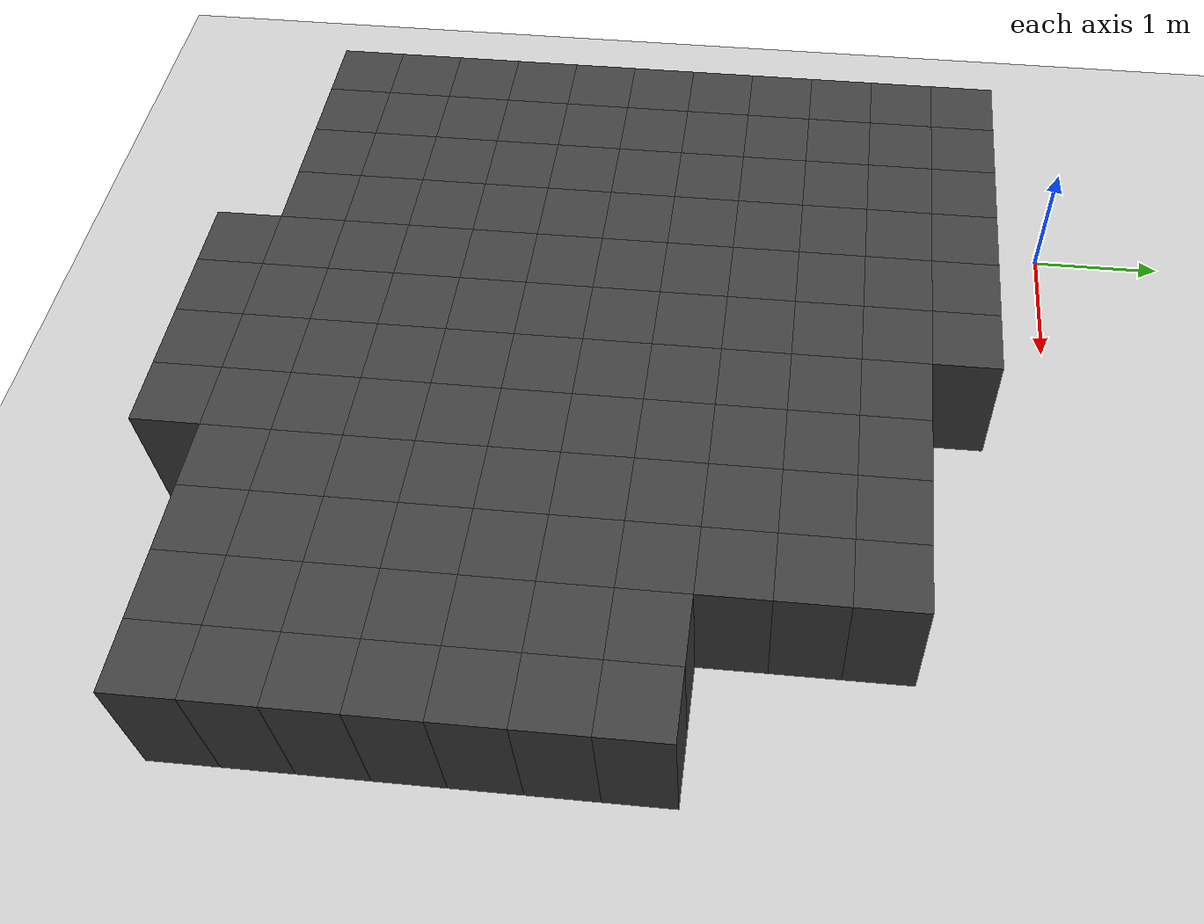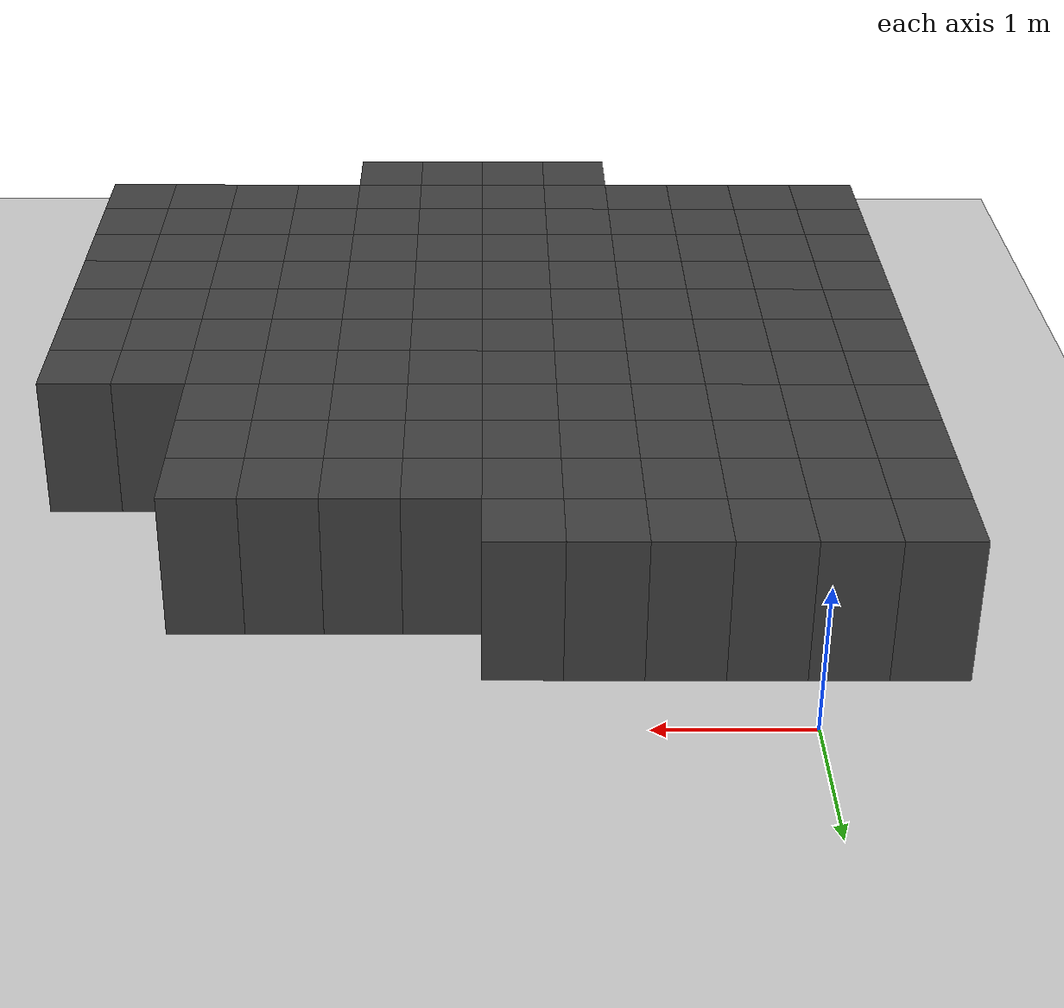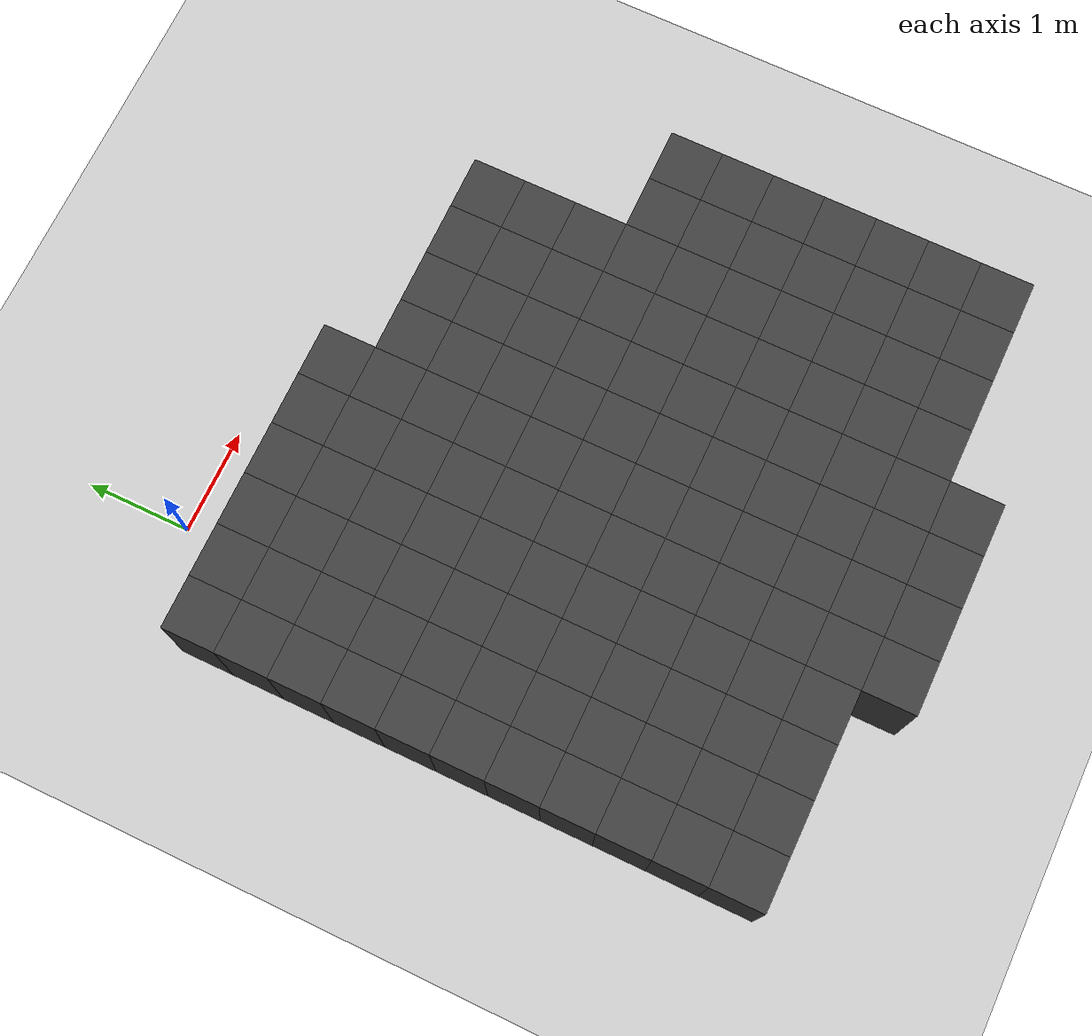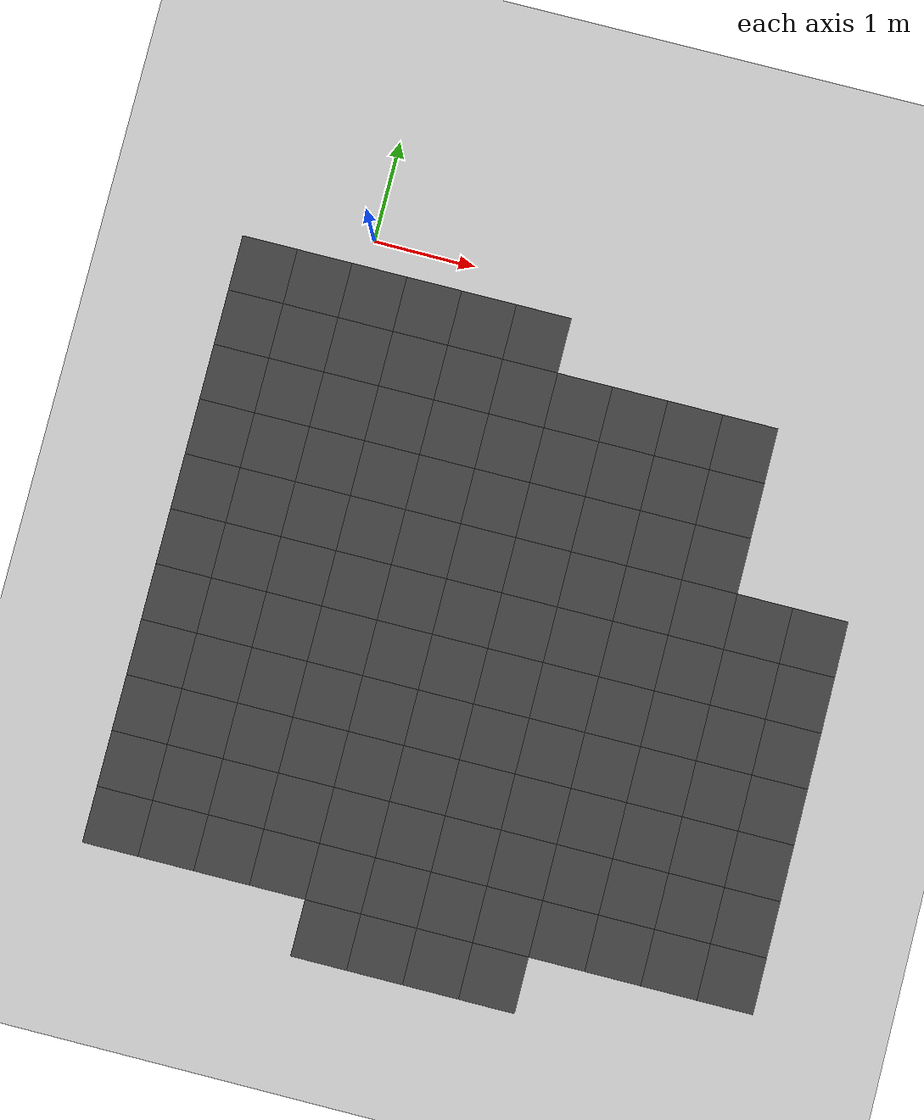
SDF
<sdf version="1.7">
 <world name="map_13364">
  <model name="ground_plane">
   <static>true</static>
   <link name="link">
    <collision name="collision">
     <geometry><plane><normal>0 0 1</normal><size>200 200</size></plane></geometry>
    </collision>
    <visual name="visual">
     <geometry><plane><normal>0 0 1</normal><size>200 200</size></plane></geometry>
     <material><ambient>0.8 0.8 0.8 1</ambient><diffuse>0.8 0.8 0.8 1</diffuse></material>
    </visual>
   </link>
  </model>
  <model name="maze_environment">
   <static>true</static>
   <link name="wall_940">
    <pose>-0.750 -0.750 0.500 0 0 0</pose>
    <collision name="col"><geometry><box><size>0.5 0.5 1.0</size></box></geometry></collision>
    <visual name="vis">
     <geometry><box><size>0.5 0.5 1.0</size></box></geometry>
     <material><ambient>0.15 0.15 0.15 1</ambient><diffuse>0.25 0.25 0.25 1</diffuse></material>
    </visual>
   </link>
   <link name="wall_941">
    <pose>-0.250 -0.750 0.500 0 0 0</pose>
    <collision name="col"><geometry><box><size>0.5 0.5 1.0</size></box></geometry></collision>
    <visual name="vis">
     <geometry><box><size>0.5 0.5 1.0</size></box></geometry>
     <material><ambient>0.15 0.15 0.15 1</ambient><diffuse>0.25 0.25 0.25 1</diffuse></material>
    </visual>
   </link>
   <link name="wall_942">
    <pose>0.250 -0.750 0.500 0 0 0</pose>
    <collision name="col"><geometry><box><size>0.5 0.5 1.0</size></box></geometry></collision>
    <visual name="vis">
     <geometry><box><size>0.5 0.5 1.0</size></box></geometry>
     <material><ambient>0.15 0.15 0.15 1</ambient><diffuse>0.25 0.25 0.25 1</diffuse></material>
    </visual>
   </link>
   <link name="wall_943">
    <pose>0.750 -0.750 0.500 0 0 0</pose>
    <collision name="col"><geometry><box><size>0.5 0.5 1.0</size></box></geometry></collision>
    <visual name="vis">
     <geometry><box><size>0.5 0.5 1.0</size></box></geometry>
     <material><ambient>0.15 0.15 0.15 1</ambient><diffuse>0.25 0.25 0.25 1</diffuse></material>
    </visual>
   </link>
   <link name="wall_944">
    <pose>1.250 -0.750 0.500 0 0 0</pose>
    <collision name="col"><geometry><box><size>0.5 0.5 1.0</size></box></geometry></collision>
    <visual name="vis">
     <geometry><box><size>0.5 0.5 1.0</size></box></geometry>
     <material><ambient>0.15 0.15 0.15 1</ambient><diffuse>0.25 0.25 0.25 1</diffuse></material>
    </visual>
   </link>
   <link name="wall_945">
    <pose>1.750 -0.750 0.500 0 0 0</pose>
    <collision name="col"><geometry><box><size>0.5 0.5 1.0</size></box></geometry></collision>
    <visual name="vis">
     <geometry><box><size>0.5 0.5 1.0</size></box></geometry>
     <material><ambient>0.15 0.15 0.15 1</ambient><diffuse>0.25 0.25 0.25 1</diffuse></material>
    </visual>
   </link>
   <link name="wall_967">
    <pose>-0.750 -1.250 0.500 0 0 0</pose>
    <collision name="col"><geometry><box><size>0.5 0.5 1.0</size></box></geometry></collision>
    <visual name="vis">
     <geometry><box><size>0.5 0.5 1.0</size></box></geometry>
     <material><ambient>0.15 0.15 0.15 1</ambient><diffuse>0.25 0.25 0.25 1</diffuse></material>
    </visual>
   </link>
   <link name="wall_968">
    <pose>-0.250 -1.250 0.500 0 0 0</pose>
    <collision name="col"><geometry><box><size>0.5 0.5 1.0</size></box></geometry></collision>
    <visual name="vis">
     <geometry><box><size>0.5 0.5 1.0</size></box></geometry>
     <material><ambient>0.15 0.15 0.15 1</ambient><diffuse>0.25 0.25 0.25 1</diffuse></material>
    </visual>
   </link>
   <link name="wall_969">
    <pose>0.250 -1.250 0.500 0 0 0</pose>
    <collision name="col"><geometry><box><size>0.5 0.5 1.0</size></box></geometry></collision>
    <visual name="vis">
     <geometry><box><size>0.5 0.5 1.0</size></box></geometry>
     <material><ambient>0.15 0.15 0.15 1</ambient><diffuse>0.25 0.25 0.25 1</diffuse></material>
    </visual>
   </link>
   <link name="wall_970">
    <pose>0.750 -1.250 0.500 0 0 0</pose>
    <collision name="col"><geometry><box><size>0.5 0.5 1.0</size></box></geometry></collision>
    <visual name="vis">
     <geometry><box><size>0.5 0.5 1.0</size></box></geometry>
     <material><ambient>0.15 0.15 0.15 1</ambient><diffuse>0.25 0.25 0.25 1</diffuse></material>
    </visual>
   </link>
   <link name="wall_971">
    <pose>1.250 -1.250 0.500 0 0 0</pose>
    <collision name="col"><geometry><box><size>0.5 0.5 1.0</size></box></geometry></collision>
    <visual name="vis">
     <geometry><box><size>0.5 0.5 1.0</size></box></geometry>
     <material><ambient>0.15 0.15 0.15 1</ambient><diffuse>0.25 0.25 0.25 1</diffuse></material>
    </visual>
   </link>
   <link name="wall_972">
    <pose>1.750 -1.250 0.500 0 0 0</pose>
    <collision name="col"><geometry><box><size>0.5 0.5 1.0</size></box></geometry></collision>
    <visual name="vis">
     <geometry><box><size>0.5 0.5 1.0</size></box></geometry>
     <material><ambient>0.15 0.15 0.15 1</ambient><diffuse>0.25 0.25 0.25 1</diffuse></material>
    </visual>
   </link>
   <link name="wall_973">
    <pose>2.250 -1.250 0.500 0 0 0</pose>
    <collision name="col"><geometry><box><size>0.5 0.5 1.0</size></box></geometry></collision>
    <visual name="vis">
     <geometry><box><size>0.5 0.5 1.0</size></box></geometry>
     <material><ambient>0.15 0.15 0.15 1</ambient><diffuse>0.25 0.25 0.25 1</diffuse></material>
    </visual>
   </link>
   <link name="wall_974">
    <pose>2.750 -1.250 0.500 0 0 0</pose>
    <collision name="col"><geometry><box><size>0.5 0.5 1.0</size></box></geometry></collision>
    <visual name="vis">
     <geometry><box><size>0.5 0.5 1.0</size></box></geometry>
     <material><ambient>0.15 0.15 0.15 1</ambient><diffuse>0.25 0.25 0.25 1</diffuse></material>
    </visual>
   </link>
   <link name="wall_975">
    <pose>3.250 -1.250 0.500 0 0 0</pose>
    <collision name="col"><geometry><box><size>0.5 0.5 1.0</size></box></geometry></collision>
    <visual name="vis">
     <geometry><box><size>0.5 0.5 1.0</size></box></geometry>
     <material><ambient>0.15 0.15 0.15 1</ambient><diffuse>0.25 0.25 0.25 1</diffuse></material>
    </visual>
   </link>
   <link name="wall_976">
    <pose>3.750 -1.250 0.500 0 0 0</pose>
    <collision name="col"><geometry><box><size>0.5 0.5 1.0</size></box></geometry></collision>
    <visual name="vis">
     <geometry><box><size>0.5 0.5 1.0</size></box></geometry>
     <material><ambient>0.15 0.15 0.15 1</ambient><diffuse>0.25 0.25 0.25 1</diffuse></material>
    </visual>
   </link>
   <link name="wall_998">
    <pose>-0.750 -1.750 0.500 0 0 0</pose>
    <collision name="col"><geometry><box><size>0.5 0.5 1.0</size></box></geometry></collision>
    <visual name="vis">
     <geometry><box><size>0.5 0.5 1.0</size></box></geometry>
     <material><ambient>0.15 0.15 0.15 1</ambient><diffuse>0.25 0.25 0.25 1</diffuse></material>
    </visual>
   </link>
   <link name="wall_999">
    <pose>-0.250 -1.750 0.500 0 0 0</pose>
    <collision name="col"><geometry><box><size>0.5 0.5 1.0</size></box></geometry></collision>
    <visual name="vis">
     <geometry><box><size>0.5 0.5 1.0</size></box></geometry>
     <material><ambient>0.15 0.15 0.15 1</ambient><diffuse>0.25 0.25 0.25 1</diffuse></material>
    </visual>
   </link>
   <link name="wall_1000">
    <pose>0.250 -1.750 0.500 0 0 0</pose>
    <collision name="col"><geometry><box><size>0.5 0.5 1.0</size></box></geometry></collision>
    <visual name="vis">
     <geometry><box><size>0.5 0.5 1.0</size></box></geometry>
     <material><ambient>0.15 0.15 0.15 1</ambient><diffuse>0.25 0.25 0.25 1</diffuse></material>
    </visual>
   </link>
   <link name="wall_1001">
    <pose>0.750 -1.750 0.500 0 0 0</pose>
    <collision name="col"><geometry><box><size>0.5 0.5 1.0</size></box></geometry></collision>
    <visual name="vis">
     <geometry><box><size>0.5 0.5 1.0</size></box></geometry>
     <material><ambient>0.15 0.15 0.15 1</ambient><diffuse>0.25 0.25 0.25 1</diffuse></material>
    </visual>
   </link>
   <link name="wall_1002">
    <pose>1.250 -1.750 0.500 0 0 0</pose>
    <collision name="col"><geometry><box><size>0.5 0.5 1.0</size></box></geometry></collision>
    <visual name="vis">
     <geometry><box><size>0.5 0.5 1.0</size></box></geometry>
     <material><ambient>0.15 0.15 0.15 1</ambient><diffuse>0.25 0.25 0.25 1</diffuse></material>
    </visual>
   </link>
   <link name="wall_1003">
    <pose>1.750 -1.750 0.500 0 0 0</pose>
    <collision name="col"><geometry><box><size>0.5 0.5 1.0</size></box></geometry></collision>
    <visual name="vis">
     <geometry><box><size>0.5 0.5 1.0</size></box></geometry>
     <material><ambient>0.15 0.15 0.15 1</ambient><diffuse>0.25 0.25 0.25 1</diffuse></material>
    </visual>
   </link>
   <link name="wall_1004">
    <pose>2.250 -1.750 0.500 0 0 0</pose>
    <collision name="col"><geometry><box><size>0.5 0.5 1.0</size></box></geometry></collision>
    <visual name="vis">
     <geometry><box><size>0.5 0.5 1.0</size></box></geometry>
     <material><ambient>0.15 0.15 0.15 1</ambient><diffuse>0.25 0.25 0.25 1</diffuse></material>
    </visual>
   </link>
   <link name="wall_1005">
    <pose>2.750 -1.750 0.500 0 0 0</pose>
    <collision name="col"><geometry><box><size>0.5 0.5 1.0</size></box></geometry></collision>
    <visual name="vis">
     <geometry><box><size>0.5 0.5 1.0</size></box></geometry>
     <material><ambient>0.15 0.15 0.15 1</ambient><diffuse>0.25 0.25 0.25 1</diffuse></material>
    </visual>
   </link>
   <link name="wall_1006">
    <pose>3.250 -1.750 0.500 0 0 0</pose>
    <collision name="col"><geometry><box><size>0.5 0.5 1.0</size></box></geometry></collision>
    <visual name="vis">
     <geometry><box><size>0.5 0.5 1.0</size></box></geometry>
     <material><ambient>0.15 0.15 0.15 1</ambient><diffuse>0.25 0.25 0.25 1</diffuse></material>
    </visual>
   </link>
   <link name="wall_1007">
    <pose>3.750 -1.750 0.500 0 0 0</pose>
    <collision name="col"><geometry><box><size>0.5 0.5 1.0</size></box></geometry></collision>
    <visual name="vis">
     <geometry><box><size>0.5 0.5 1.0</size></box></geometry>
     <material><ambient>0.15 0.15 0.15 1</ambient><diffuse>0.25 0.25 0.25 1</diffuse></material>
    </visual>
   </link>
   <link name="wall_1029">
    <pose>-0.750 -2.250 0.500 0 0 0</pose>
    <collision name="col"><geometry><box><size>0.5 0.5 1.0</size></box></geometry></collision>
    <visual name="vis">
     <geometry><box><size>0.5 0.5 1.0</size></box></geometry>
     <material><ambient>0.15 0.15 0.15 1</ambient><diffuse>0.25 0.25 0.25 1</diffuse></material>
    </visual>
   </link>
   <link name="wall_1030">
    <pose>-0.250 -2.250 0.500 0 0 0</pose>
    <collision name="col"><geometry><box><size>0.5 0.5 1.0</size></box></geometry></collision>
    <visual name="vis">
     <geometry><box><size>0.5 0.5 1.0</size></box></geometry>
     <material><ambient>0.15 0.15 0.15 1</ambient><diffuse>0.25 0.25 0.25 1</diffuse></material>
    </visual>
   </link>
   <link name="wall_1031">
    <pose>0.250 -2.250 0.500 0 0 0</pose>
    <collision name="col"><geometry><box><size>0.5 0.5 1.0</size></box></geometry></collision>
    <visual name="vis">
     <geometry><box><size>0.5 0.5 1.0</size></box></geometry>
     <material><ambient>0.15 0.15 0.15 1</ambient><diffuse>0.25 0.25 0.25 1</diffuse></material>
    </visual>
   </link>
   <link name="wall_1032">
    <pose>0.750 -2.250 0.500 0 0 0</pose>
    <collision name="col"><geometry><box><size>0.5 0.5 1.0</size></box></geometry></collision>
    <visual name="vis">
     <geometry><box><size>0.5 0.5 1.0</size></box></geometry>
     <material><ambient>0.15 0.15 0.15 1</ambient><diffuse>0.25 0.25 0.25 1</diffuse></material>
    </visual>
   </link>
   <link name="wall_1033">
    <pose>1.250 -2.250 0.500 0 0 0</pose>
    <collision name="col"><geometry><box><size>0.5 0.5 1.0</size></box></geometry></collision>
    <visual name="vis">
     <geometry><box><size>0.5 0.5 1.0</size></box></geometry>
     <material><ambient>0.15 0.15 0.15 1</ambient><diffuse>0.25 0.25 0.25 1</diffuse></material>
    </visual>
   </link>
   <link name="wall_1034">
    <pose>1.750 -2.250 0.500 0 0 0</pose>
    <collision name="col"><geometry><box><size>0.5 0.5 1.0</size></box></geometry></collision>
    <visual name="vis">
     <geometry><box><size>0.5 0.5 1.0</size></box></geometry>
     <material><ambient>0.15 0.15 0.15 1</ambient><diffuse>0.25 0.25 0.25 1</diffuse></material>
    </visual>
   </link>
   <link name="wall_1035">
    <pose>2.250 -2.250 0.500 0 0 0</pose>
    <collision name="col"><geometry><box><size>0.5 0.5 1.0</size></box></geometry></collision>
    <visual name="vis">
     <geometry><box><size>0.5 0.5 1.0</size></box></geometry>
     <material><ambient>0.15 0.15 0.15 1</ambient><diffuse>0.25 0.25 0.25 1</diffuse></material>
    </visual>
   </link>
   <link name="wall_1036">
    <pose>2.750 -2.250 0.500 0 0 0</pose>
    <collision name="col"><geometry><box><size>0.5 0.5 1.0</size></box></geometry></collision>
    <visual name="vis">
     <geometry><box><size>0.5 0.5 1.0</size></box></geometry>
     <material><ambient>0.15 0.15 0.15 1</ambient><diffuse>0.25 0.25 0.25 1</diffuse></material>
    </visual>
   </link>
   <link name="wall_1037">
    <pose>3.250 -2.250 0.500 0 0 0</pose>
    <collision name="col"><geometry><box><size>0.5 0.5 1.0</size></box></geometry></collision>
    <visual name="vis">
     <geometry><box><size>0.5 0.5 1.0</size></box></geometry>
     <material><ambient>0.15 0.15 0.15 1</ambient><diffuse>0.25 0.25 0.25 1</diffuse></material>
    </visual>
   </link>
   <link name="wall_1038">
    <pose>3.750 -2.250 0.500 0 0 0</pose>
    <collision name="col"><geometry><box><size>0.5 0.5 1.0</size></box></geometry></collision>
    <visual name="vis">
     <geometry><box><size>0.5 0.5 1.0</size></box></geometry>
     <material><ambient>0.15 0.15 0.15 1</ambient><diffuse>0.25 0.25 0.25 1</diffuse></material>
    </visual>
   </link>
   <link name="wall_1066">
    <pose>-0.750 -2.750 0.500 0 0 0</pose>
    <collision name="col"><geometry><box><size>0.5 0.5 1.0</size></box></geometry></collision>
    <visual name="vis">
     <geometry><box><size>0.5 0.5 1.0</size></box></geometry>
     <material><ambient>0.15 0.15 0.15 1</ambient><diffuse>0.25 0.25 0.25 1</diffuse></material>
    </visual>
   </link>
   <link name="wall_1067">
    <pose>-0.250 -2.750 0.500 0 0 0</pose>
    <collision name="col"><geometry><box><size>0.5 0.5 1.0</size></box></geometry></collision>
    <visual name="vis">
     <geometry><box><size>0.5 0.5 1.0</size></box></geometry>
     <material><ambient>0.15 0.15 0.15 1</ambient><diffuse>0.25 0.25 0.25 1</diffuse></material>
    </visual>
   </link>
   <link name="wall_1068">
    <pose>0.250 -2.750 0.500 0 0 0</pose>
    <collision name="col"><geometry><box><size>0.5 0.5 1.0</size></box></geometry></collision>
    <visual name="vis">
     <geometry><box><size>0.5 0.5 1.0</size></box></geometry>
     <material><ambient>0.15 0.15 0.15 1</ambient><diffuse>0.25 0.25 0.25 1</diffuse></material>
    </visual>
   </link>
   <link name="wall_1069">
    <pose>0.750 -2.750 0.500 0 0 0</pose>
    <collision name="col"><geometry><box><size>0.5 0.5 1.0</size></box></geometry></collision>
    <visual name="vis">
     <geometry><box><size>0.5 0.5 1.0</size></box></geometry>
     <material><ambient>0.15 0.15 0.15 1</ambient><diffuse>0.25 0.25 0.25 1</diffuse></material>
    </visual>
   </link>
   <link name="wall_1070">
    <pose>1.250 -2.750 0.500 0 0 0</pose>
    <collision name="col"><geometry><box><size>0.5 0.5 1.0</size></box></geometry></collision>
    <visual name="vis">
     <geometry><box><size>0.5 0.5 1.0</size></box></geometry>
     <material><ambient>0.15 0.15 0.15 1</ambient><diffuse>0.25 0.25 0.25 1</diffuse></material>
    </visual>
   </link>
   <link name="wall_1071">
    <pose>1.750 -2.750 0.500 0 0 0</pose>
    <collision name="col"><geometry><box><size>0.5 0.5 1.0</size></box></geometry></collision>
    <visual name="vis">
     <geometry><box><size>0.5 0.5 1.0</size></box></geometry>
     <material><ambient>0.15 0.15 0.15 1</ambient><diffuse>0.25 0.25 0.25 1</diffuse></material>
    </visual>
   </link>
   <link name="wall_1072">
    <pose>2.250 -2.750 0.500 0 0 0</pose>
    <collision name="col"><geometry><box><size>0.5 0.5 1.0</size></box></geometry></collision>
    <visual name="vis">
     <geometry><box><size>0.5 0.5 1.0</size></box></geometry>
     <material><ambient>0.15 0.15 0.15 1</ambient><diffuse>0.25 0.25 0.25 1</diffuse></material>
    </visual>
   </link>
   <link name="wall_1073">
    <pose>2.750 -2.750 0.500 0 0 0</pose>
    <collision name="col"><geometry><box><size>0.5 0.5 1.0</size></box></geometry></collision>
    <visual name="vis">
     <geometry><box><size>0.5 0.5 1.0</size></box></geometry>
     <material><ambient>0.15 0.15 0.15 1</ambient><diffuse>0.25 0.25 0.25 1</diffuse></material>
    </visual>
   </link>
   <link name="wall_1074">
    <pose>3.250 -2.750 0.500 0 0 0</pose>
    <collision name="col"><geometry><box><size>0.5 0.5 1.0</size></box></geometry></collision>
    <visual name="vis">
     <geometry><box><size>0.5 0.5 1.0</size></box></geometry>
     <material><ambient>0.15 0.15 0.15 1</ambient><diffuse>0.25 0.25 0.25 1</diffuse></material>
    </visual>
   </link>
   <link name="wall_1075">
    <pose>3.750 -2.750 0.500 0 0 0</pose>
    <collision name="col"><geometry><box><size>0.5 0.5 1.0</size></box></geometry></collision>
    <visual name="vis">
     <geometry><box><size>0.5 0.5 1.0</size></box></geometry>
     <material><ambient>0.15 0.15 0.15 1</ambient><diffuse>0.25 0.25 0.25 1</diffuse></material>
    </visual>
   </link>
   <link name="wall_1076">
    <pose>4.250 -2.750 0.500 0 0 0</pose>
    <collision name="col"><geometry><box><size>0.5 0.5 1.0</size></box></geometry></collision>
    <visual name="vis">
     <geometry><box><size>0.5 0.5 1.0</size></box></geometry>
     <material><ambient>0.15 0.15 0.15 1</ambient><diffuse>0.25 0.25 0.25 1</diffuse></material>
    </visual>
   </link>
   <link name="wall_1077">
    <pose>4.750 -2.750 0.500 0 0 0</pose>
    <collision name="col"><geometry><box><size>0.5 0.5 1.0</size></box></geometry></collision>
    <visual name="vis">
     <geometry><box><size>0.5 0.5 1.0</size></box></geometry>
     <material><ambient>0.15 0.15 0.15 1</ambient><diffuse>0.25 0.25 0.25 1</diffuse></material>
    </visual>
   </link>
   <link name="wall_1106">
    <pose>-0.750 -3.250 0.500 0 0 0</pose>
    <collision name="col"><geometry><box><size>0.5 0.5 1.0</size></box></geometry></collision>
    <visual name="vis">
     <geometry><box><size>0.5 0.5 1.0</size></box></geometry>
     <material><ambient>0.15 0.15 0.15 1</ambient><diffuse>0.25 0.25 0.25 1</diffuse></material>
    </visual>
   </link>
   <link name="wall_1107">
    <pose>-0.250 -3.250 0.500 0 0 0</pose>
    <collision name="col"><geometry><box><size>0.5 0.5 1.0</size></box></geometry></collision>
    <visual name="vis">
     <geometry><box><size>0.5 0.5 1.0</size></box></geometry>
     <material><ambient>0.15 0.15 0.15 1</ambient><diffuse>0.25 0.25 0.25 1</diffuse></material>
    </visual>
   </link>
   <link name="wall_1108">
    <pose>0.250 -3.250 0.500 0 0 0</pose>
    <collision name="col"><geometry><box><size>0.5 0.5 1.0</size></box></geometry></collision>
    <visual name="vis">
     <geometry><box><size>0.5 0.5 1.0</size></box></geometry>
     <material><ambient>0.15 0.15 0.15 1</ambient><diffuse>0.25 0.25 0.25 1</diffuse></material>
    </visual>
   </link>
   <link name="wall_1109">
    <pose>0.750 -3.250 0.500 0 0 0</pose>
    <collision name="col"><geometry><box><size>0.5 0.5 1.0</size></box></geometry></collision>
    <visual name="vis">
     <geometry><box><size>0.5 0.5 1.0</size></box></geometry>
     <material><ambient>0.15 0.15 0.15 1</ambient><diffuse>0.25 0.25 0.25 1</diffuse></material>
    </visual>
   </link>
   <link name="wall_1110">
    <pose>1.250 -3.250 0.500 0 0 0</pose>
    <collision name="col"><geometry><box><size>0.5 0.5 1.0</size></box></geometry></collision>
    <visual name="vis">
     <geometry><box><size>0.5 0.5 1.0</size></box></geometry>
     <material><ambient>0.15 0.15 0.15 1</ambient><diffuse>0.25 0.25 0.25 1</diffuse></material>
    </visual>
   </link>
   <link name="wall_1111">
    <pose>1.750 -3.250 0.500 0 0 0</pose>
    <collision name="col"><geometry><box><size>0.5 0.5 1.0</size></box></geometry></collision>
    <visual name="vis">
     <geometry><box><size>0.5 0.5 1.0</size></box></geometry>
     <material><ambient>0.15 0.15 0.15 1</ambient><diffuse>0.25 0.25 0.25 1</diffuse></material>
    </visual>
   </link>
   <link name="wall_1112">
    <pose>2.250 -3.250 0.500 0 0 0</pose>
    <collision name="col"><geometry><box><size>0.5 0.5 1.0</size></box></geometry></collision>
    <visual name="vis">
     <geometry><box><size>0.5 0.5 1.0</size></box></geometry>
     <material><ambient>0.15 0.15 0.15 1</ambient><diffuse>0.25 0.25 0.25 1</diffuse></material>
    </visual>
   </link>
   <link name="wall_1113">
    <pose>2.750 -3.250 0.500 0 0 0</pose>
    <collision name="col"><geometry><box><size>0.5 0.5 1.0</size></box></geometry></collision>
    <visual name="vis">
     <geometry><box><size>0.5 0.5 1.0</size></box></geometry>
     <material><ambient>0.15 0.15 0.15 1</ambient><diffuse>0.25 0.25 0.25 1</diffuse></material>
    </visual>
   </link>
   <link name="wall_1114">
    <pose>3.250 -3.250 0.500 0 0 0</pose>
    <collision name="col"><geometry><box><size>0.5 0.5 1.0</size></box></geometry></collision>
    <visual name="vis">
     <geometry><box><size>0.5 0.5 1.0</size></box></geometry>
     <material><ambient>0.15 0.15 0.15 1</ambient><diffuse>0.25 0.25 0.25 1</diffuse></material>
    </visual>
   </link>
   <link name="wall_1115">
    <pose>3.750 -3.250 0.500 0 0 0</pose>
    <collision name="col"><geometry><box><size>0.5 0.5 1.0</size></box></geometry></collision>
    <visual name="vis">
     <geometry><box><size>0.5 0.5 1.0</size></box></geometry>
     <material><ambient>0.15 0.15 0.15 1</ambient><diffuse>0.25 0.25 0.25 1</diffuse></material>
    </visual>
   </link>
   <link name="wall_1116">
    <pose>4.250 -3.250 0.500 0 0 0</pose>
    <collision name="col"><geometry><box><size>0.5 0.5 1.0</size></box></geometry></collision>
    <visual name="vis">
     <geometry><box><size>0.5 0.5 1.0</size></box></geometry>
     <material><ambient>0.15 0.15 0.15 1</ambient><diffuse>0.25 0.25 0.25 1</diffuse></material>
    </visual>
   </link>
   <link name="wall_1117">
    <pose>4.750 -3.250 0.500 0 0 0</pose>
    <collision name="col"><geometry><box><size>0.5 0.5 1.0</size></box></geometry></collision>
    <visual name="vis">
     <geometry><box><size>0.5 0.5 1.0</size></box></geometry>
     <material><ambient>0.15 0.15 0.15 1</ambient><diffuse>0.25 0.25 0.25 1</diffuse></material>
    </visual>
   </link>
   <link name="wall_1141">
    <pose>-0.750 -3.750 0.500 0 0 0</pose>
    <collision name="col"><geometry><box><size>0.5 0.5 1.0</size></box></geometry></collision>
    <visual name="vis">
     <geometry><box><size>0.5 0.5 1.0</size></box></geometry>
     <material><ambient>0.15 0.15 0.15 1</ambient><diffuse>0.25 0.25 0.25 1</diffuse></material>
    </visual>
   </link>
   <link name="wall_1142">
    <pose>-0.250 -3.750 0.500 0 0 0</pose>
    <collision name="col"><geometry><box><size>0.5 0.5 1.0</size></box></geometry></collision>
    <visual name="vis">
     <geometry><box><size>0.5 0.5 1.0</size></box></geometry>
     <material><ambient>0.15 0.15 0.15 1</ambient><diffuse>0.25 0.25 0.25 1</diffuse></material>
    </visual>
   </link>
   <link name="wall_1143">
    <pose>0.250 -3.750 0.500 0 0 0</pose>
    <collision name="col"><geometry><box><size>0.5 0.5 1.0</size></box></geometry></collision>
    <visual name="vis">
     <geometry><box><size>0.5 0.5 1.0</size></box></geometry>
     <material><ambient>0.15 0.15 0.15 1</ambient><diffuse>0.25 0.25 0.25 1</diffuse></material>
    </visual>
   </link>
   <link name="wall_1144">
    <pose>0.750 -3.750 0.500 0 0 0</pose>
    <collision name="col"><geometry><box><size>0.5 0.5 1.0</size></box></geometry></collision>
    <visual name="vis">
     <geometry><box><size>0.5 0.5 1.0</size></box></geometry>
     <material><ambient>0.15 0.15 0.15 1</ambient><diffuse>0.25 0.25 0.25 1</diffuse></material>
    </visual>
   </link>
   <link name="wall_1145">
    <pose>1.250 -3.750 0.500 0 0 0</pose>
    <collision name="col"><geometry><box><size>0.5 0.5 1.0</size></box></geometry></collision>
    <visual name="vis">
     <geometry><box><size>0.5 0.5 1.0</size></box></geometry>
     <material><ambient>0.15 0.15 0.15 1</ambient><diffuse>0.25 0.25 0.25 1</diffuse></material>
    </visual>
   </link>
   <link name="wall_1146">
    <pose>1.750 -3.750 0.500 0 0 0</pose>
    <collision name="col"><geometry><box><size>0.5 0.5 1.0</size></box></geometry></collision>
    <visual name="vis">
     <geometry><box><size>0.5 0.5 1.0</size></box></geometry>
     <material><ambient>0.15 0.15 0.15 1</ambient><diffuse>0.25 0.25 0.25 1</diffuse></material>
    </visual>
   </link>
   <link name="wall_1147">
    <pose>2.250 -3.750 0.500 0 0 0</pose>
    <collision name="col"><geometry><box><size>0.5 0.5 1.0</size></box></geometry></collision>
    <visual name="vis">
     <geometry><box><size>0.5 0.5 1.0</size></box></geometry>
     <material><ambient>0.15 0.15 0.15 1</ambient><diffuse>0.25 0.25 0.25 1</diffuse></material>
    </visual>
   </link>
   <link name="wall_1148">
    <pose>2.750 -3.750 0.500 0 0 0</pose>
    <collision name="col"><geometry><box><size>0.5 0.5 1.0</size></box></geometry></collision>
    <visual name="vis">
     <geometry><box><size>0.5 0.5 1.0</size></box></geometry>
     <material><ambient>0.15 0.15 0.15 1</ambient><diffuse>0.25 0.25 0.25 1</diffuse></material>
    </visual>
   </link>
   <link name="wall_1149">
    <pose>3.250 -3.750 0.500 0 0 0</pose>
    <collision name="col"><geometry><box><size>0.5 0.5 1.0</size></box></geometry></collision>
    <visual name="vis">
     <geometry><box><size>0.5 0.5 1.0</size></box></geometry>
     <material><ambient>0.15 0.15 0.15 1</ambient><diffuse>0.25 0.25 0.25 1</diffuse></material>
    </visual>
   </link>
   <link name="wall_1150">
    <pose>3.750 -3.750 0.500 0 0 0</pose>
    <collision name="col"><geometry><box><size>0.5 0.5 1.0</size></box></geometry></collision>
    <visual name="vis">
     <geometry><box><size>0.5 0.5 1.0</size></box></geometry>
     <material><ambient>0.15 0.15 0.15 1</ambient><diffuse>0.25 0.25 0.25 1</diffuse></material>
    </visual>
   </link>
   <link name="wall_1151">
    <pose>4.250 -3.750 0.500 0 0 0</pose>
    <collision name="col"><geometry><box><size>0.5 0.5 1.0</size></box></geometry></collision>
    <visual name="vis">
     <geometry><box><size>0.5 0.5 1.0</size></box></geometry>
     <material><ambient>0.15 0.15 0.15 1</ambient><diffuse>0.25 0.25 0.25 1</diffuse></material>
    </visual>
   </link>
   <link name="wall_1152">
    <pose>4.750 -3.750 0.500 0 0 0</pose>
    <collision name="col"><geometry><box><size>0.5 0.5 1.0</size></box></geometry></collision>
    <visual name="vis">
     <geometry><box><size>0.5 0.5 1.0</size></box></geometry>
     <material><ambient>0.15 0.15 0.15 1</ambient><diffuse>0.25 0.25 0.25 1</diffuse></material>
    </visual>
   </link>
   <link name="wall_1176">
    <pose>-0.750 -4.250 0.500 0 0 0</pose>
    <collision name="col"><geometry><box><size>0.5 0.5 1.0</size></box></geometry></collision>
    <visual name="vis">
     <geometry><box><size>0.5 0.5 1.0</size></box></geometry>
     <material><ambient>0.15 0.15 0.15 1</ambient><diffuse>0.25 0.25 0.25 1</diffuse></material>
    </visual>
   </link>
   <link name="wall_1177">
    <pose>-0.250 -4.250 0.500 0 0 0</pose>
    <collision name="col"><geometry><box><size>0.5 0.5 1.0</size></box></geometry></collision>
    <visual name="vis">
     <geometry><box><size>0.5 0.5 1.0</size></box></geometry>
     <material><ambient>0.15 0.15 0.15 1</ambient><diffuse>0.25 0.25 0.25 1</diffuse></material>
    </visual>
   </link>
   <link name="wall_1178">
    <pose>0.250 -4.250 0.500 0 0 0</pose>
    <collision name="col"><geometry><box><size>0.5 0.5 1.0</size></box></geometry></collision>
    <visual name="vis">
     <geometry><box><size>0.5 0.5 1.0</size></box></geometry>
     <material><ambient>0.15 0.15 0.15 1</ambient><diffuse>0.25 0.25 0.25 1</diffuse></material>
    </visual>
   </link>
   <link name="wall_1179">
    <pose>0.750 -4.250 0.500 0 0 0</pose>
    <collision name="col"><geometry><box><size>0.5 0.5 1.0</size></box></geometry></collision>
    <visual name="vis">
     <geometry><box><size>0.5 0.5 1.0</size></box></geometry>
     <material><ambient>0.15 0.15 0.15 1</ambient><diffuse>0.25 0.25 0.25 1</diffuse></material>
    </visual>
   </link>
   <link name="wall_1180">
    <pose>1.250 -4.250 0.500 0 0 0</pose>
    <collision name="col"><geometry><box><size>0.5 0.5 1.0</size></box></geometry></collision>
    <visual name="vis">
     <geometry><box><size>0.5 0.5 1.0</size></box></geometry>
     <material><ambient>0.15 0.15 0.15 1</ambient><diffuse>0.25 0.25 0.25 1</diffuse></material>
    </visual>
   </link>
   <link name="wall_1181">
    <pose>1.750 -4.250 0.500 0 0 0</pose>
    <collision name="col"><geometry><box><size>0.5 0.5 1.0</size></box></geometry></collision>
    <visual name="vis">
     <geometry><box><size>0.5 0.5 1.0</size></box></geometry>
     <material><ambient>0.15 0.15 0.15 1</ambient><diffuse>0.25 0.25 0.25 1</diffuse></material>
    </visual>
   </link>
   <link name="wall_1182">
    <pose>2.250 -4.250 0.500 0 0 0</pose>
    <collision name="col"><geometry><box><size>0.5 0.5 1.0</size></box></geometry></collision>
    <visual name="vis">
     <geometry><box><size>0.5 0.5 1.0</size></box></geometry>
     <material><ambient>0.15 0.15 0.15 1</ambient><diffuse>0.25 0.25 0.25 1</diffuse></material>
    </visual>
   </link>
   <link name="wall_1183">
    <pose>2.750 -4.250 0.500 0 0 0</pose>
    <collision name="col"><geometry><box><size>0.5 0.5 1.0</size></box></geometry></collision>
    <visual name="vis">
     <geometry><box><size>0.5 0.5 1.0</size></box></geometry>
     <material><ambient>0.15 0.15 0.15 1</ambient><diffuse>0.25 0.25 0.25 1</diffuse></material>
    </visual>
   </link>
   <link name="wall_1184">
    <pose>3.250 -4.250 0.500 0 0 0</pose>
    <collision name="col"><geometry><box><size>0.5 0.5 1.0</size></box></geometry></collision>
    <visual name="vis">
     <geometry><box><size>0.5 0.5 1.0</size></box></geometry>
     <material><ambient>0.15 0.15 0.15 1</ambient><diffuse>0.25 0.25 0.25 1</diffuse></material>
    </visual>
   </link>
   <link name="wall_1185">
    <pose>3.750 -4.250 0.500 0 0 0</pose>
    <collision name="col"><geometry><box><size>0.5 0.5 1.0</size></box></geometry></collision>
    <visual name="vis">
     <geometry><box><size>0.5 0.5 1.0</size></box></geometry>
     <material><ambient>0.15 0.15 0.15 1</ambient><diffuse>0.25 0.25 0.25 1</diffuse></material>
    </visual>
   </link>
   <link name="wall_1186">
    <pose>4.250 -4.250 0.500 0 0 0</pose>
    <collision name="col"><geometry><box><size>0.5 0.5 1.0</size></box></geometry></collision>
    <visual name="vis">
     <geometry><box><size>0.5 0.5 1.0</size></box></geometry>
     <material><ambient>0.15 0.15 0.15 1</ambient><diffuse>0.25 0.25 0.25 1</diffuse></material>
    </visual>
   </link>
   <link name="wall_1187">
    <pose>4.750 -4.250 0.500 0 0 0</pose>
    <collision name="col"><geometry><box><size>0.5 0.5 1.0</size></box></geometry></collision>
    <visual name="vis">
     <geometry><box><size>0.5 0.5 1.0</size></box></geometry>
     <material><ambient>0.15 0.15 0.15 1</ambient><diffuse>0.25 0.25 0.25 1</diffuse></material>
    </visual>
   </link>
   <link name="wall_1219">
    <pose>-0.750 -4.750 0.500 0 0 0</pose>
    <collision name="col"><geometry><box><size>0.5 0.5 1.0</size></box></geometry></collision>
    <visual name="vis">
     <geometry><box><size>0.5 0.5 1.0</size></box></geometry>
     <material><ambient>0.15 0.15 0.15 1</ambient><diffuse>0.25 0.25 0.25 1</diffuse></material>
    </visual>
   </link>
   <link name="wall_1220">
    <pose>-0.250 -4.750 0.500 0 0 0</pose>
    <collision name="col"><geometry><box><size>0.5 0.5 1.0</size></box></geometry></collision>
    <visual name="vis">
     <geometry><box><size>0.5 0.5 1.0</size></box></geometry>
     <material><ambient>0.15 0.15 0.15 1</ambient><diffuse>0.25 0.25 0.25 1</diffuse></material>
    </visual>
   </link>
   <link name="wall_1221">
    <pose>0.250 -4.750 0.500 0 0 0</pose>
    <collision name="col"><geometry><box><size>0.5 0.5 1.0</size></box></geometry></collision>
    <visual name="vis">
     <geometry><box><size>0.5 0.5 1.0</size></box></geometry>
     <material><ambient>0.15 0.15 0.15 1</ambient><diffuse>0.25 0.25 0.25 1</diffuse></material>
    </visual>
   </link>
   <link name="wall_1222">
    <pose>0.750 -4.750 0.500 0 0 0</pose>
    <collision name="col"><geometry><box><size>0.5 0.5 1.0</size></box></geometry></collision>
    <visual name="vis">
     <geometry><box><size>0.5 0.5 1.0</size></box></geometry>
     <material><ambient>0.15 0.15 0.15 1</ambient><diffuse>0.25 0.25 0.25 1</diffuse></material>
    </visual>
   </link>
   <link name="wall_1223">
    <pose>1.250 -4.750 0.500 0 0 0</pose>
    <collision name="col"><geometry><box><size>0.5 0.5 1.0</size></box></geometry></collision>
    <visual name="vis">
     <geometry><box><size>0.5 0.5 1.0</size></box></geometry>
     <material><ambient>0.15 0.15 0.15 1</ambient><diffuse>0.25 0.25 0.25 1</diffuse></material>
    </visual>
   </link>
   <link name="wall_1224">
    <pose>1.750 -4.750 0.500 0 0 0</pose>
    <collision name="col"><geometry><box><size>0.5 0.5 1.0</size></box></geometry></collision>
    <visual name="vis">
     <geometry><box><size>0.5 0.5 1.0</size></box></geometry>
     <material><ambient>0.15 0.15 0.15 1</ambient><diffuse>0.25 0.25 0.25 1</diffuse></material>
    </visual>
   </link>
   <link name="wall_1225">
    <pose>2.250 -4.750 0.500 0 0 0</pose>
    <collision name="col"><geometry><box><size>0.5 0.5 1.0</size></box></geometry></collision>
    <visual name="vis">
     <geometry><box><size>0.5 0.5 1.0</size></box></geometry>
     <material><ambient>0.15 0.15 0.15 1</ambient><diffuse>0.25 0.25 0.25 1</diffuse></material>
    </visual>
   </link>
   <link name="wall_1226">
    <pose>2.750 -4.750 0.500 0 0 0</pose>
    <collision name="col"><geometry><box><size>0.5 0.5 1.0</size></box></geometry></collision>
    <visual name="vis">
     <geometry><box><size>0.5 0.5 1.0</size></box></geometry>
     <material><ambient>0.15 0.15 0.15 1</ambient><diffuse>0.25 0.25 0.25 1</diffuse></material>
    </visual>
   </link>
   <link name="wall_1227">
    <pose>3.250 -4.750 0.500 0 0 0</pose>
    <collision name="col"><geometry><box><size>0.5 0.5 1.0</size></box></geometry></collision>
    <visual name="vis">
     <geometry><box><size>0.5 0.5 1.0</size></box></geometry>
     <material><ambient>0.15 0.15 0.15 1</ambient><diffuse>0.25 0.25 0.25 1</diffuse></material>
    </visual>
   </link>
   <link name="wall_1228">
    <pose>3.750 -4.750 0.500 0 0 0</pose>
    <collision name="col"><geometry><box><size>0.5 0.5 1.0</size></box></geometry></collision>
    <visual name="vis">
     <geometry><box><size>0.5 0.5 1.0</size></box></geometry>
     <material><ambient>0.15 0.15 0.15 1</ambient><diffuse>0.25 0.25 0.25 1</diffuse></material>
    </visual>
   </link>
   <link name="wall_1229">
    <pose>4.250 -4.750 0.500 0 0 0</pose>
    <collision name="col"><geometry><box><size>0.5 0.5 1.0</size></box></geometry></collision>
    <visual name="vis">
     <geometry><box><size>0.5 0.5 1.0</size></box></geometry>
     <material><ambient>0.15 0.15 0.15 1</ambient><diffuse>0.25 0.25 0.25 1</diffuse></material>
    </visual>
   </link>
   <link name="wall_1230">
    <pose>4.750 -4.750 0.500 0 0 0</pose>
    <collision name="col"><geometry><box><size>0.5 0.5 1.0</size></box></geometry></collision>
    <visual name="vis">
     <geometry><box><size>0.5 0.5 1.0</size></box></geometry>
     <material><ambient>0.15 0.15 0.15 1</ambient><diffuse>0.25 0.25 0.25 1</diffuse></material>
    </visual>
   </link>
   <link name="wall_1262">
    <pose>-0.750 -5.250 0.500 0 0 0</pose>
    <collision name="col"><geometry><box><size>0.5 0.5 1.0</size></box></geometry></collision>
    <visual name="vis">
     <geometry><box><size>0.5 0.5 1.0</size></box></geometry>
     <material><ambient>0.15 0.15 0.15 1</ambient><diffuse>0.25 0.25 0.25 1</diffuse></material>
    </visual>
   </link>
   <link name="wall_1263">
    <pose>-0.250 -5.250 0.500 0 0 0</pose>
    <collision name="col"><geometry><box><size>0.5 0.5 1.0</size></box></geometry></collision>
    <visual name="vis">
     <geometry><box><size>0.5 0.5 1.0</size></box></geometry>
     <material><ambient>0.15 0.15 0.15 1</ambient><diffuse>0.25 0.25 0.25 1</diffuse></material>
    </visual>
   </link>
   <link name="wall_1264">
    <pose>0.250 -5.250 0.500 0 0 0</pose>
    <collision name="col"><geometry><box><size>0.5 0.5 1.0</size></box></geometry></collision>
    <visual name="vis">
     <geometry><box><size>0.5 0.5 1.0</size></box></geometry>
     <material><ambient>0.15 0.15 0.15 1</ambient><diffuse>0.25 0.25 0.25 1</diffuse></material>
    </visual>
   </link>
   <link name="wall_1265">
    <pose>0.750 -5.250 0.500 0 0 0</pose>
    <collision name="col"><geometry><box><size>0.5 0.5 1.0</size></box></geometry></collision>
    <visual name="vis">
     <geometry><box><size>0.5 0.5 1.0</size></box></geometry>
     <material><ambient>0.15 0.15 0.15 1</ambient><diffuse>0.25 0.25 0.25 1</diffuse></material>
    </visual>
   </link>
   <link name="wall_1266">
    <pose>1.250 -5.250 0.500 0 0 0</pose>
    <collision name="col"><geometry><box><size>0.5 0.5 1.0</size></box></geometry></collision>
    <visual name="vis">
     <geometry><box><size>0.5 0.5 1.0</size></box></geometry>
     <material><ambient>0.15 0.15 0.15 1</ambient><diffuse>0.25 0.25 0.25 1</diffuse></material>
    </visual>
   </link>
   <link name="wall_1267">
    <pose>1.750 -5.250 0.500 0 0 0</pose>
    <collision name="col"><geometry><box><size>0.5 0.5 1.0</size></box></geometry></collision>
    <visual name="vis">
     <geometry><box><size>0.5 0.5 1.0</size></box></geometry>
     <material><ambient>0.15 0.15 0.15 1</ambient><diffuse>0.25 0.25 0.25 1</diffuse></material>
    </visual>
   </link>
   <link name="wall_1268">
    <pose>2.250 -5.250 0.500 0 0 0</pose>
    <collision name="col"><geometry><box><size>0.5 0.5 1.0</size></box></geometry></collision>
    <visual name="vis">
     <geometry><box><size>0.5 0.5 1.0</size></box></geometry>
     <material><ambient>0.15 0.15 0.15 1</ambient><diffuse>0.25 0.25 0.25 1</diffuse></material>
    </visual>
   </link>
   <link name="wall_1269">
    <pose>2.750 -5.250 0.500 0 0 0</pose>
    <collision name="col"><geometry><box><size>0.5 0.5 1.0</size></box></geometry></collision>
    <visual name="vis">
     <geometry><box><size>0.5 0.5 1.0</size></box></geometry>
     <material><ambient>0.15 0.15 0.15 1</ambient><diffuse>0.25 0.25 0.25 1</diffuse></material>
    </visual>
   </link>
   <link name="wall_1270">
    <pose>3.250 -5.250 0.500 0 0 0</pose>
    <collision name="col"><geometry><box><size>0.5 0.5 1.0</size></box></geometry></collision>
    <visual name="vis">
     <geometry><box><size>0.5 0.5 1.0</size></box></geometry>
     <material><ambient>0.15 0.15 0.15 1</ambient><diffuse>0.25 0.25 0.25 1</diffuse></material>
    </visual>
   </link>
   <link name="wall_1271">
    <pose>3.750 -5.250 0.500 0 0 0</pose>
    <collision name="col"><geometry><box><size>0.5 0.5 1.0</size></box></geometry></collision>
    <visual name="vis">
     <geometry><box><size>0.5 0.5 1.0</size></box></geometry>
     <material><ambient>0.15 0.15 0.15 1</ambient><diffuse>0.25 0.25 0.25 1</diffuse></material>
    </visual>
   </link>
   <link name="wall_1272">
    <pose>4.250 -5.250 0.500 0 0 0</pose>
    <collision name="col"><geometry><box><size>0.5 0.5 1.0</size></box></geometry></collision>
    <visual name="vis">
     <geometry><box><size>0.5 0.5 1.0</size></box></geometry>
     <material><ambient>0.15 0.15 0.15 1</ambient><diffuse>0.25 0.25 0.25 1</diffuse></material>
    </visual>
   </link>
   <link name="wall_1273">
    <pose>4.750 -5.250 0.500 0 0 0</pose>
    <collision name="col"><geometry><box><size>0.5 0.5 1.0</size></box></geometry></collision>
    <visual name="vis">
     <geometry><box><size>0.5 0.5 1.0</size></box></geometry>
     <material><ambient>0.15 0.15 0.15 1</ambient><diffuse>0.25 0.25 0.25 1</diffuse></material>
    </visual>
   </link>
   <link name="wall_1305">
    <pose>-0.750 -5.750 0.500 0 0 0</pose>
    <collision name="col"><geometry><box><size>0.5 0.5 1.0</size></box></geometry></collision>
    <visual name="vis">
     <geometry><box><size>0.5 0.5 1.0</size></box></geometry>
     <material><ambient>0.15 0.15 0.15 1</ambient><diffuse>0.25 0.25 0.25 1</diffuse></material>
    </visual>
   </link>
   <link name="wall_1306">
    <pose>-0.250 -5.750 0.500 0 0 0</pose>
    <collision name="col"><geometry><box><size>0.5 0.5 1.0</size></box></geometry></collision>
    <visual name="vis">
     <geometry><box><size>0.5 0.5 1.0</size></box></geometry>
     <material><ambient>0.15 0.15 0.15 1</ambient><diffuse>0.25 0.25 0.25 1</diffuse></material>
    </visual>
   </link>
   <link name="wall_1307">
    <pose>0.250 -5.750 0.500 0 0 0</pose>
    <collision name="col"><geometry><box><size>0.5 0.5 1.0</size></box></geometry></collision>
    <visual name="vis">
     <geometry><box><size>0.5 0.5 1.0</size></box></geometry>
     <material><ambient>0.15 0.15 0.15 1</ambient><diffuse>0.25 0.25 0.25 1</diffuse></material>
    </visual>
   </link>
   <link name="wall_1308">
    <pose>0.750 -5.750 0.500 0 0 0</pose>
    <collision name="col"><geometry><box><size>0.5 0.5 1.0</size></box></geometry></collision>
    <visual name="vis">
     <geometry><box><size>0.5 0.5 1.0</size></box></geometry>
     <material><ambient>0.15 0.15 0.15 1</ambient><diffuse>0.25 0.25 0.25 1</diffuse></material>
    </visual>
   </link>
   <link name="wall_1309">
    <pose>1.250 -5.750 0.500 0 0 0</pose>
    <collision name="col"><geometry><box><size>0.5 0.5 1.0</size></box></geometry></collision>
    <visual name="vis">
     <geometry><box><size>0.5 0.5 1.0</size></box></geometry>
     <material><ambient>0.15 0.15 0.15 1</ambient><diffuse>0.25 0.25 0.25 1</diffuse></material>
    </visual>
   </link>
   <link name="wall_1310">
    <pose>1.750 -5.750 0.500 0 0 0</pose>
    <collision name="col"><geometry><box><size>0.5 0.5 1.0</size></box></geometry></collision>
    <visual name="vis">
     <geometry><box><size>0.5 0.5 1.0</size></box></geometry>
     <material><ambient>0.15 0.15 0.15 1</ambient><diffuse>0.25 0.25 0.25 1</diffuse></material>
    </visual>
   </link>
   <link name="wall_1311">
    <pose>2.250 -5.750 0.500 0 0 0</pose>
    <collision name="col"><geometry><box><size>0.5 0.5 1.0</size></box></geometry></collision>
    <visual name="vis">
     <geometry><box><size>0.5 0.5 1.0</size></box></geometry>
     <material><ambient>0.15 0.15 0.15 1</ambient><diffuse>0.25 0.25 0.25 1</diffuse></material>
    </visual>
   </link>
   <link name="wall_1312">
    <pose>2.750 -5.750 0.500 0 0 0</pose>
    <collision name="col"><geometry><box><size>0.5 0.5 1.0</size></box></geometry></collision>
    <visual name="vis">
     <geometry><box><size>0.5 0.5 1.0</size></box></geometry>
     <material><ambient>0.15 0.15 0.15 1</ambient><diffuse>0.25 0.25 0.25 1</diffuse></material>
    </visual>
   </link>
   <link name="wall_1313">
    <pose>3.250 -5.750 0.500 0 0 0</pose>
    <collision name="col"><geometry><box><size>0.5 0.5 1.0</size></box></geometry></collision>
    <visual name="vis">
     <geometry><box><size>0.5 0.5 1.0</size></box></geometry>
     <material><ambient>0.15 0.15 0.15 1</ambient><diffuse>0.25 0.25 0.25 1</diffuse></material>
    </visual>
   </link>
   <link name="wall_1314">
    <pose>3.750 -5.750 0.500 0 0 0</pose>
    <collision name="col"><geometry><box><size>0.5 0.5 1.0</size></box></geometry></collision>
    <visual name="vis">
     <geometry><box><size>0.5 0.5 1.0</size></box></geometry>
     <material><ambient>0.15 0.15 0.15 1</ambient><diffuse>0.25 0.25 0.25 1</diffuse></material>
    </visual>
   </link>
   <link name="wall_1315">
    <pose>4.250 -5.750 0.500 0 0 0</pose>
    <collision name="col"><geometry><box><size>0.5 0.5 1.0</size></box></geometry></collision>
    <visual name="vis">
     <geometry><box><size>0.5 0.5 1.0</size></box></geometry>
     <material><ambient>0.15 0.15 0.15 1</ambient><diffuse>0.25 0.25 0.25 1</diffuse></material>
    </visual>
   </link>
   <link name="wall_1316">
    <pose>4.750 -5.750 0.500 0 0 0</pose>
    <collision name="col"><geometry><box><size>0.5 0.5 1.0</size></box></geometry></collision>
    <visual name="vis">
     <geometry><box><size>0.5 0.5 1.0</size></box></geometry>
     <material><ambient>0.15 0.15 0.15 1</ambient><diffuse>0.25 0.25 0.25 1</diffuse></material>
    </visual>
   </link>
   <link name="wall_1352">
    <pose>1.250 -6.250 0.500 0 0 0</pose>
    <collision name="col"><geometry><box><size>0.5 0.5 1.0</size></box></geometry></collision>
    <visual name="vis">
     <geometry><box><size>0.5 0.5 1.0</size></box></geometry>
     <material><ambient>0.15 0.15 0.15 1</ambient><diffuse>0.25 0.25 0.25 1</diffuse></material>
    </visual>
   </link>
   <link name="wall_1353">
    <pose>1.750 -6.250 0.500 0 0 0</pose>
    <collision name="col"><geometry><box><size>0.5 0.5 1.0</size></box></geometry></collision>
    <visual name="vis">
     <geometry><box><size>0.5 0.5 1.0</size></box></geometry>
     <material><ambient>0.15 0.15 0.15 1</ambient><diffuse>0.25 0.25 0.25 1</diffuse></material>
    </visual>
   </link>
   <link name="wall_1354">
    <pose>2.250 -6.250 0.500 0 0 0</pose>
    <collision name="col"><geometry><box><size>0.5 0.5 1.0</size></box></geometry></collision>
    <visual name="vis">
     <geometry><box><size>0.5 0.5 1.0</size></box></geometry>
     <material><ambient>0.15 0.15 0.15 1</ambient><diffuse>0.25 0.25 0.25 1</diffuse></material>
    </visual>
   </link>
   <link name="wall_1355">
    <pose>2.750 -6.250 0.500 0 0 0</pose>
    <collision name="col"><geometry><box><size>0.5 0.5 1.0</size></box></geometry></collision>
    <visual name="vis">
     <geometry><box><size>0.5 0.5 1.0</size></box></geometry>
     <material><ambient>0.15 0.15 0.15 1</ambient><diffuse>0.25 0.25 0.25 1</diffuse></material>
    </visual>
   </link>
  </model>
 </world>
</sdf>
